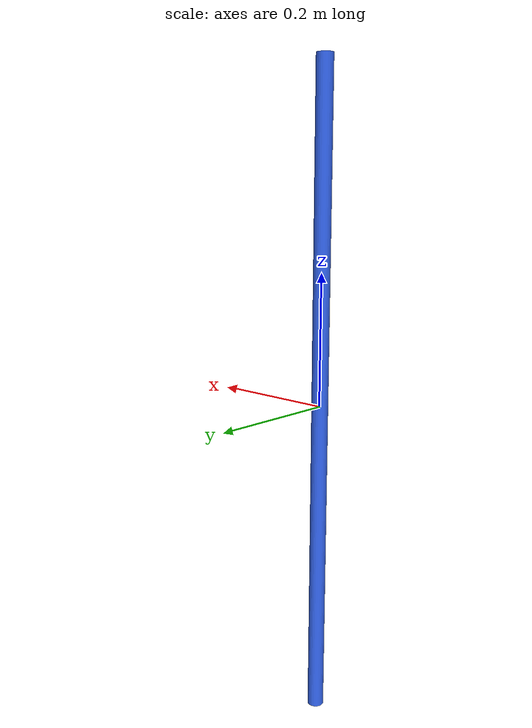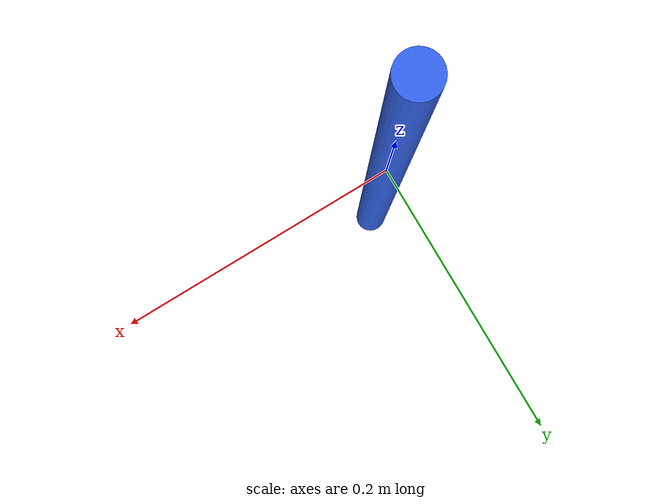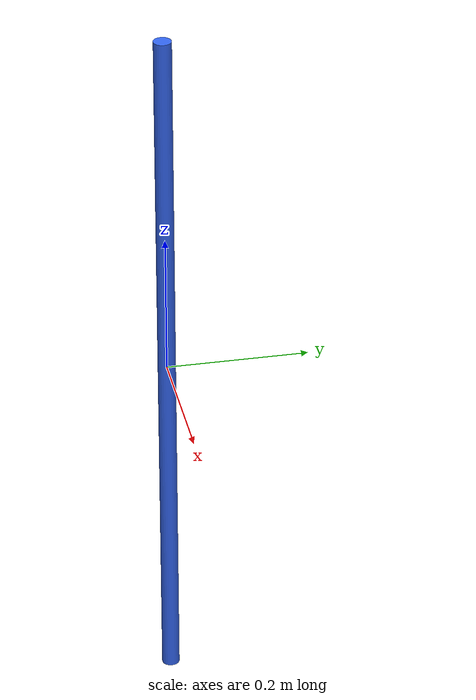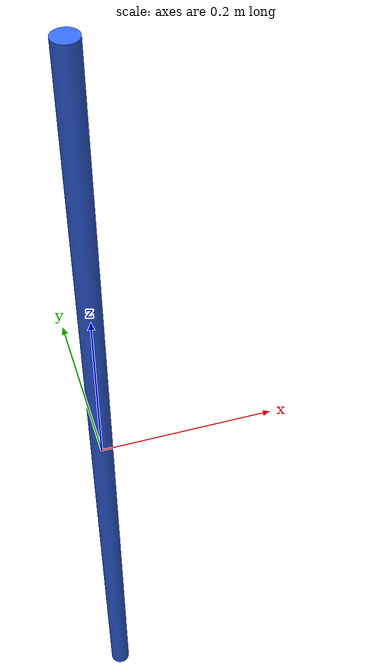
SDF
<?xml version="1.0"?>
<!--
  Blue water/heating pipe — wall-mounted thin pipe.
  Cylinder: 0.025 m diameter × configurable length.
  Blue color (hot+cold water lines).
-->
<sdf version="1.9">
  <model name="pipe_water">
    <static>true</static>

    <plugin filename="gz-sim-label-system" name="gz::sim::systems::Label">
      <label>1</label>
    </plugin>

    <link name="pipe">
      <pose>0 0 0 0 0 0</pose>
      <visual name="vis">
        <geometry>
          <cylinder><radius>0.0125</radius><length>1.0</length></cylinder>
        </geometry>
        <material>
          <ambient>0.15 0.30 0.85 1</ambient>
          <diffuse>0.20 0.40 0.95 1</diffuse>
          <specular>0.3 0.3 0.3 1</specular>
        </material>
      </visual>
      <collision name="col">
        <geometry>
          <cylinder><radius>0.0125</radius><length>1.0</length></cylinder>
        </geometry>
      </collision>
    </link>

  </model>
</sdf>
